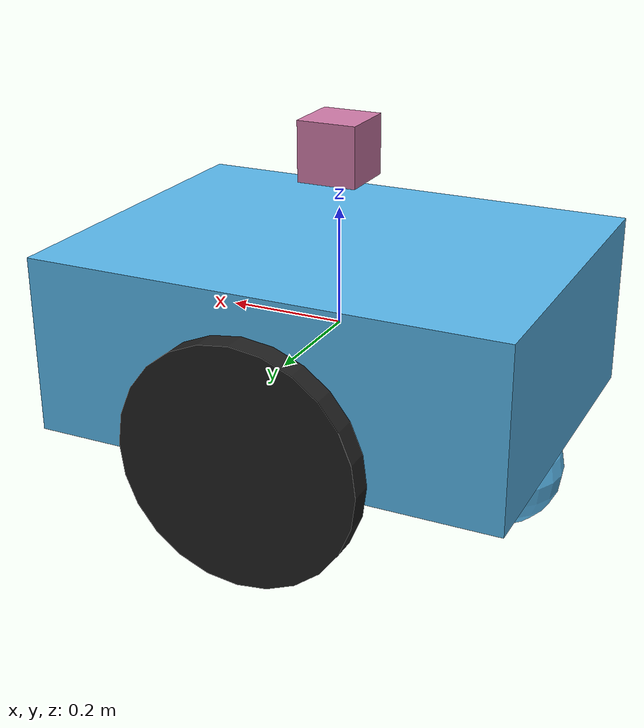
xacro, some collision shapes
<?xml version='1.0'?>

<robot name="my_robot" xmlns:xacro="http://www.ros.org/wiki/xacro">

  <xacro:include filename="$(find my_robot)/urdf/my_robot.gazebo" />

  <link name="robot_footprint"></link>

  <joint name="robot_footprint_joint" type="fixed">
    <origin xyz="0 0 0" rpy="0 0 0" />
    <parent link="robot_footprint"/>
    <child link="chassis" />
  </joint>

  <link name='chassis'>
    <pose>0 0 0.3 0 0 0</pose>

    <inertial>
      <mass value="15.0"/>
      <origin xyz="0.0 0 0" rpy=" 0 0 0"/>
      <inertia
          ixx="0.1" ixy="0" ixz="0"
          iyy="0.1" iyz="0"
          izz="0.1"
      />
    </inertial>

    <collision name='collision'>
      <origin xyz="0 0 0" rpy=" 0 0 0"/>
      <geometry>
        <box size=".8 .6 .3"/>
      </geometry>
    </collision>

    <visual name='chassis_visual'>
      <origin xyz="0 0 0" rpy=" 0 0 0"/>
      <geometry>
        <box size=".8 .6 .3"/>
      </geometry>
    </visual>

    <collision name='back_caster_collision'>
      <origin xyz="-0.3 0 -0.2" rpy=" 0 0 0"/>
      <geometry>
        <sphere radius="0.099"/>
      </geometry>
    </collision>

    <visual name='back_caster_visual'>
      <origin xyz="-0.3 0 -0.2" rpy=" 0 0 0"/>
      <geometry>
        <sphere radius="0.1"/>
      </geometry>
    </visual>

    <collision name='front_caster_collision'>
      <origin xyz="0.3 0 -0.2" rpy=" 0 0 0"/>
      <geometry>
        <sphere radius="0.099"/>
      </geometry>
    </collision>

    <visual name='front_caster_visual'>
      <origin xyz="0.3 0 -0.2" rpy=" 0 0 0"/>
      <geometry>
        <sphere radius="0.1"/>
      </geometry>
    </visual>

  </link>

  <!-- 2. Wheels -->
  <!-- left wheel -->
  <link name='left_wheel'>
    <collision>
      <origin xyz="0 0 0" rpy="0 1.5707 1.5707"/>
      <geometry>
        <cylinder radius="0.2" length="0.04"/>
      </geometry>
    </collision>
    <visual>
      <origin xyz="0 0 0" rpy="0 1.5707 1.5707"/>
      <geometry>
        <cylinder radius="0.2" length="0.04"/>
      </geometry>
    </visual>
    <inertial>
      <origin xyz="0 0 0" rpy="0 1.5707 1.5707"/>
      <mass value="5"/>
      <inertia
          ixx="0.1" ixy="0" ixz="0"
          iyy="0.1" iyz="0"
          izz="0.1"/>
    </inertial>
  </link>

  <gazebo reference="left_wheel">
    <material>Gazebo/Black</material>
  </gazebo>

  <joint type="continuous" name="left_wheel_hinge">
    <origin xyz="0 0.35 -0.1" rpy="0 0 0"/>
    <parent link="chassis"/>
    <child link="left_wheel"/>
    <axis xyz="0 1 0" rpy="0 0 0"/>
    <limit effort="10000" velocity="1000"/>
    <dynamics damping="1.0" friction="1.0"/>
  </joint>

  <!-- right wheel -->
  <link name='right_wheel'>
    <collision>
      <origin xyz="0 0 0" rpy="0 1.5707 1.5707"/>
      <geometry>
        <cylinder radius="0.2" length="0.04"/>
      </geometry>
    </collision>
    <visual>
      <origin xyz="0 0 0" rpy="0 1.5707 1.5707"/>
      <geometry>
        <cylinder radius="0.2" length="0.04"/>
      </geometry>
    </visual>
    <inertial>
      <origin xyz="0 0 0" rpy="0 1.5707 1.5707"/>
      <mass value="5"/>
      <inertia
          ixx="0.1" ixy="0" ixz="0"
          iyy="0.1" iyz="0"
          izz="0.1"/>
    </inertial>
  </link>

  <gazebo reference="right_wheel">
    <material>Gazebo/Black</material>
  </gazebo>

  <joint type="continuous" name="right_wheel_hinge">
    <origin xyz="0 -0.35 -0.1" rpy="0 0 0"/>
    <parent link="chassis"/>
    <child link="right_wheel"/>
    <axis xyz="0 1 0" rpy="0 0 0"/>
    <limit effort="10000" velocity="1000"/>
    <dynamics damping="1.0" friction="1.0"/>
  </joint>

  <!-- 3. Sensors -->
  <!-- camera -->
  <link name='camera'>
    <collision>
      <origin xyz="0 0 0" rpy="0 0 0"/>
      <geometry>
        <box size="0.05 0.05 0.05"/>
      </geometry>
    </collision>
    <visual>
      <origin xyz="0 0 0" rpy="0 0 0"/>
      <geometry>
        <box size="0.05 0.05 0.05"/>
      </geometry>
    </visual>
    <inertial>
      <origin xyz="0 0 0" rpy="0 0 0"/>
      <mass value="0.1"/>
      <inertia
          ixx="1e-6" ixy="0" ixz="0"
          iyy="1e-6" iyz="0"
          izz="1e-6"/>
    </inertial>
  </link>

  <gazebo reference="camera">
    <material>Gazebo/Gray</material>
  </gazebo>

  <joint type="fixed" name="camera_joint">
    <origin xyz="0.5 0 0" rpy="0 0 0"/>
    <parent link="chassis"/>
    <child link="camera"/>
  </joint>

  <!-- depth camera -->
  <joint name="camera_optical_joint" type="fixed">
    <origin xyz="0 0 0" rpy="-1.5707 0 -1.5707"/>
    <parent link="camera"/>
    <child link="camera_link_optical"/>
  </joint>

  <link name="camera_link_optical">
  </link>

  <!-- lidar -->
  <link name='hokuyo'>
    <collision>
      <origin xyz="0 0 0" rpy="0 0 0"/>
      <geometry>
        <box size="0.1 0.1 0.1"/>
      </geometry>
    </collision>
    <visual>
      <origin xyz="0 0 0" rpy="0 0 0"/>
      <geometry>
        <mesh filename="package://my_robot/meshes/hokuyo.dae"/>
      </geometry>
    </visual>
    <inertial>
      <origin xyz="0 0 0" rpy="0 0 0"/>
      <mass value="1e-5"/>
      <inertia
          ixx="1e-6" ixy="0" ixz="0"
          iyy="1e-6" iyz="0"
          izz="1e-6"/>
    </inertial>
  </link>

  <joint type="fixed" name="hokuyo_joint">
    <origin xyz="0 0 0.3" rpy="0 0 0"/>
    <parent link="chassis"/>
    <child link="hokuyo"/>
  </joint>

</robot>
